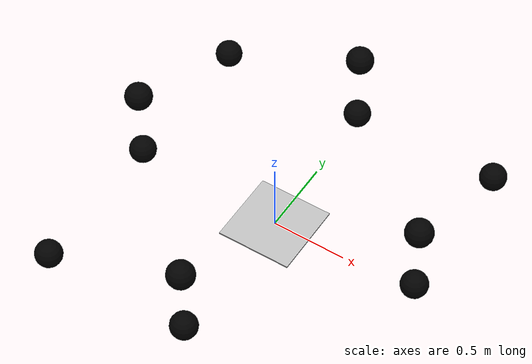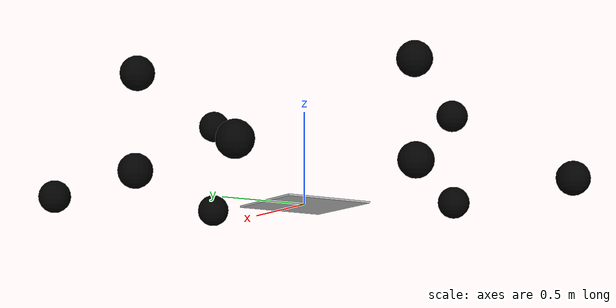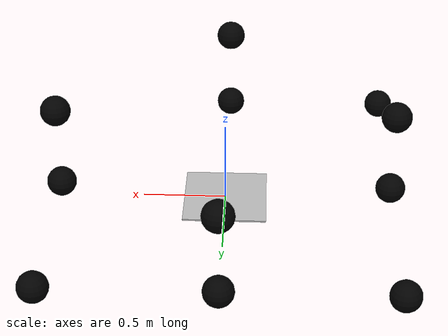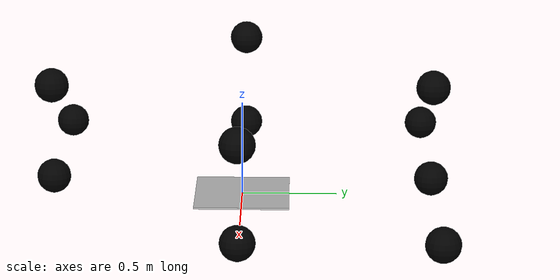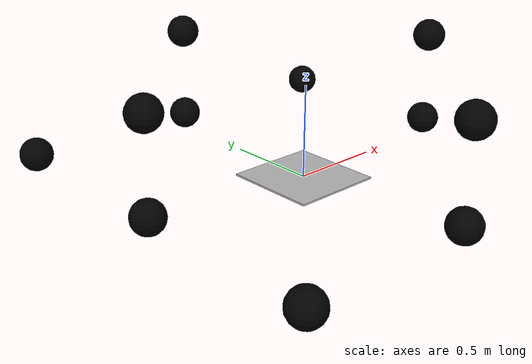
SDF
<?xml version="1.0" ?>
<sdf version="1.6">
  <model name="chess_board">
    <pose>0 0 0 0 0 0</pose>
    <static>true</static>

    <link name="board">

      <visual name="visual">
        <cast_shadows>false</cast_shadows>
        <geometry>
          <box>
            <size>0.5 0.5 .01</size>
          </box>
        </geometry>
        <material>
          <script>
            <uri>model://chess_board/materials/scripts</uri>
            <uri>model://chess_board/materials/textures</uri>
            <name>Cube/chess_board</name>
          </script>
        </material>
      </visual>
    </link>

    <!-- 添加12个黑色小球 -->
    <!-- 每个球的直径设为方格的1/4 -->
    <link name="sphere1">
      <pose>-1.0 -1.0 0.09 0 0 0</pose>
      <visual name="visual">
        <geometry>
          <sphere>
            <radius>0.09</radius>
          </sphere>
        </geometry>
        <material>
          <ambient>0 0 0 1</ambient>
          <diffuse>0 0 0 1</diffuse>
          <specular>0 0 0 1</specular>
          <emissive>0 0 0 1</emissive>
        </material>
      </visual>
    </link>
    <link name="sphere2">
      <pose>-1.0 0 0.09 0 0 0</pose>
      <visual name="visual">
        <geometry>
          <sphere>
            <radius>0.09</radius>
          </sphere>
        </geometry>
        <material>
          <ambient>0 0 0 1</ambient>
          <diffuse>0 0 0 1</diffuse>
          <specular>0 0 0 1</specular>
          <emissive>0 0 0 1</emissive>
        </material>
      </visual>
    </link>
    <link name="sphere2-2">
      <pose>-1.0 0 0.59 0 0 0</pose>
      <visual name="visual">
        <geometry>
          <sphere>
            <radius>0.09</radius>
          </sphere>
        </geometry>
        <material>
          <ambient>0 0 0 1</ambient>
          <diffuse>0 0 0 1</diffuse>
          <specular>0 0 0 1</specular>
          <emissive>0 0 0 1</emissive>
        </material>
      </visual>
    </link>

    <link name="sphere3">
      <pose>-1.0 1.0 0.09 0 0 0</pose>
      <visual name="visual">
        <geometry>
          <sphere>
            <radius>0.09</radius>
          </sphere>
        </geometry>
        <material>
          <ambient>0 0 0 1</ambient>
          <diffuse>0 0 0 1</diffuse>
          <specular>0 0 0 1</specular>
          <emissive>0 0 0 1</emissive>
        </material>
      </visual>
    </link>

    <link name="sphere4">
      <pose>0 1.0 0.09 0 0 0</pose>
      <visual name="visual">
        <geometry>
          <sphere>
            <radius>0.09</radius>
          </sphere>
        </geometry>
        <material>
          <ambient>0 0 0 1</ambient>
          <diffuse>0 0 0 1</diffuse>
          <specular>0 0 0 1</specular>
          <emissive>0 0 0 1</emissive>
        </material>
      </visual>
    </link>
    <link name="sphere4-2">
      <pose>0 1.0 0.59 0 0 0</pose>
      <visual name="visual">
        <geometry>
          <sphere>
            <radius>0.09</radius>
          </sphere>
        </geometry>
        <material>
          <ambient>0 0 0 1</ambient>
          <diffuse>0 0 0 1</diffuse>
          <specular>0 0 0 1</specular>
          <emissive>0 0 0 1</emissive>
        </material>
      </visual>
    </link>

    <link name="sphere5">
      <pose>1.0 1.0 0.09 0 0 0</pose>
      <visual name="visual">
        <geometry>
          <sphere>
            <radius>0.09</radius>
          </sphere>
        </geometry>
        <material>
          <ambient>0 0 0 1</ambient>
          <diffuse>0 0 0 1</diffuse>
          <specular>0 0 0 1</specular>
          <emissive>0 0 0 1</emissive>
        </material>
      </visual>
    </link>

    <link name="sphere6">
      <pose>1.0 0 0.09 0 0 0</pose>
      <visual name="visual">
        <geometry>
          <sphere>
            <radius>0.09</radius>
          </sphere>
        </geometry>
        <material>
          <ambient>0 0 0 1</ambient>
          <diffuse>0 0 0 1</diffuse>
          <specular>0 0 0 1</specular>
          <emissive>0 0 0 1</emissive>
        </material>
      </visual>
    </link>
    <link name="sphere6-2">
      <pose>1.0 0 0.59 0 0 0</pose>
      <visual name="visual">
        <geometry>
          <sphere>
            <radius>0.09</radius>
          </sphere>
        </geometry>
        <material>
          <ambient>0 0 0 1</ambient>
          <diffuse>0 0 0 1</diffuse>
          <specular>0 0 0 1</specular>
          <emissive>0 0 0 1</emissive>
        </material>
      </visual>
    </link>

    <link name="sphere7">
      <pose>0 -1.0 0.09 0 0 0</pose>
      <visual name="visual">
        <geometry>
          <sphere>
            <radius>0.09</radius>
          </sphere>
        </geometry>
        <material>
          <ambient>0 0 0 1</ambient>
          <diffuse>0 0 0 1</diffuse>
          <specular>0 0 0 1</specular>
          <emissive>0 0 0 1</emissive>
        </material>
      </visual>
    </link>
    <link name="sphere7_2">
      <pose>0 -1.0 0.59 0 0 0</pose>
      <visual name="visual">
        <geometry>
          <sphere>
            <radius>0.09</radius>
          </sphere>
        </geometry>
        <material>
          <ambient>0 0 0 1</ambient>
          <diffuse>0 0 0 1</diffuse>
          <specular>0 0 0 1</specular>
          <emissive>0 0 0 1</emissive>
        </material>
      </visual>
    </link>

  </model>
</sdf>
